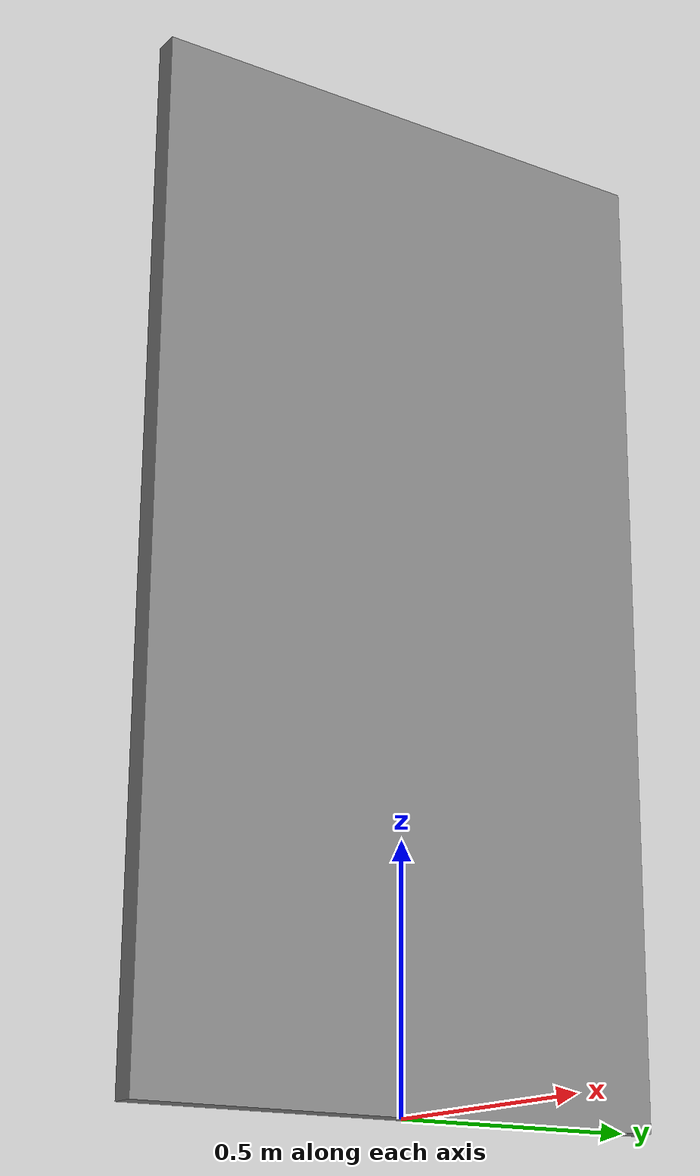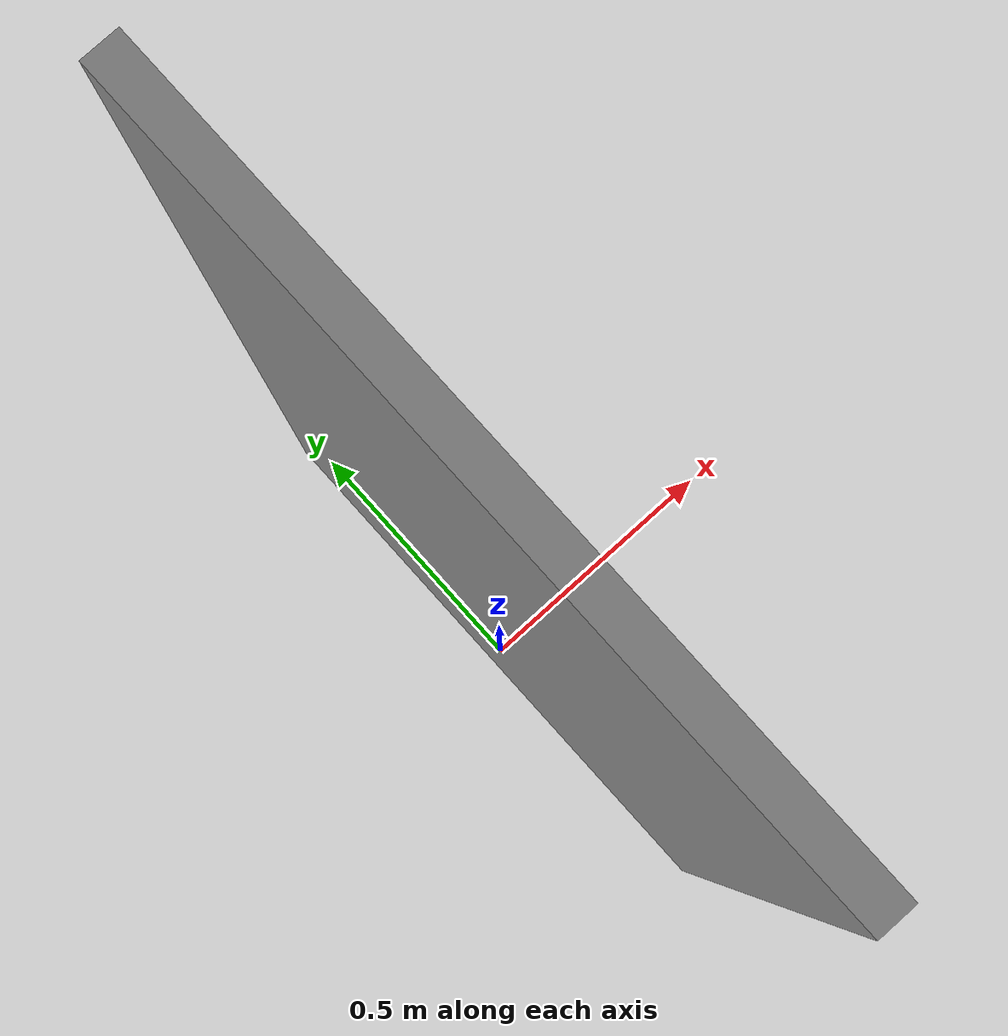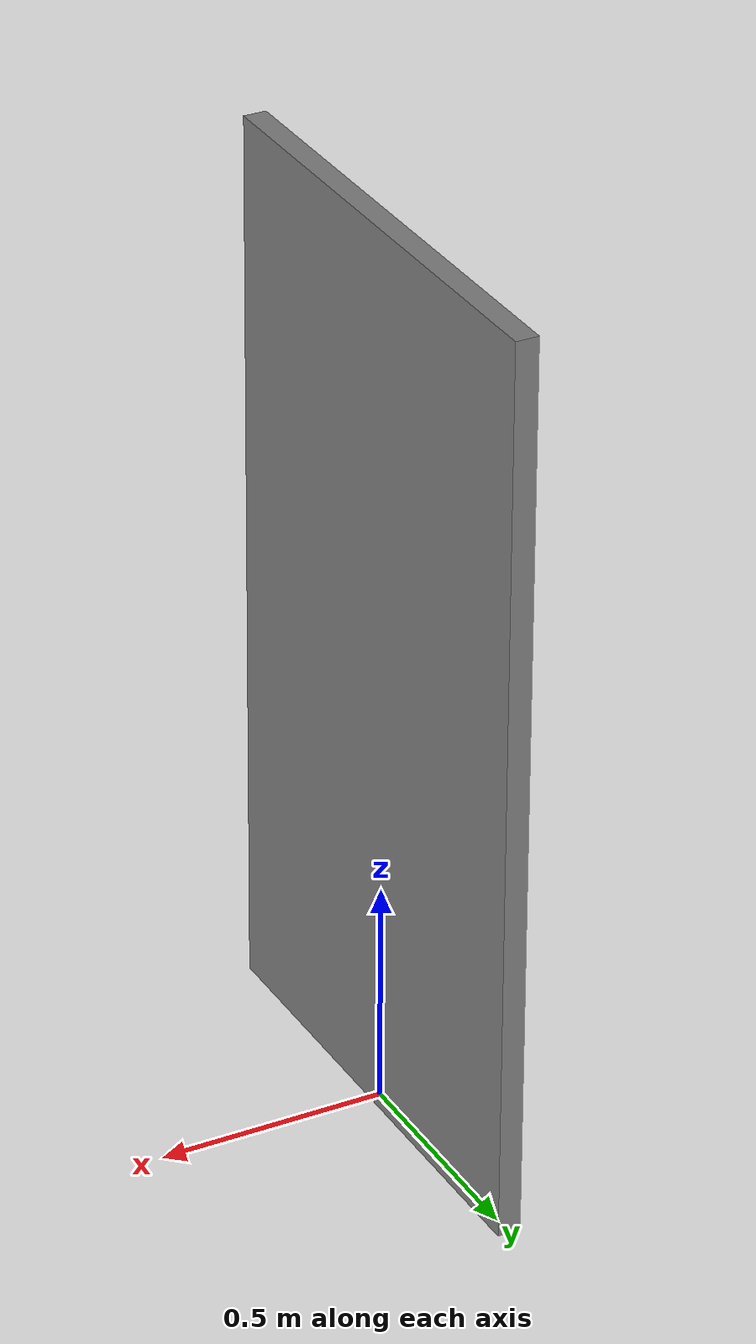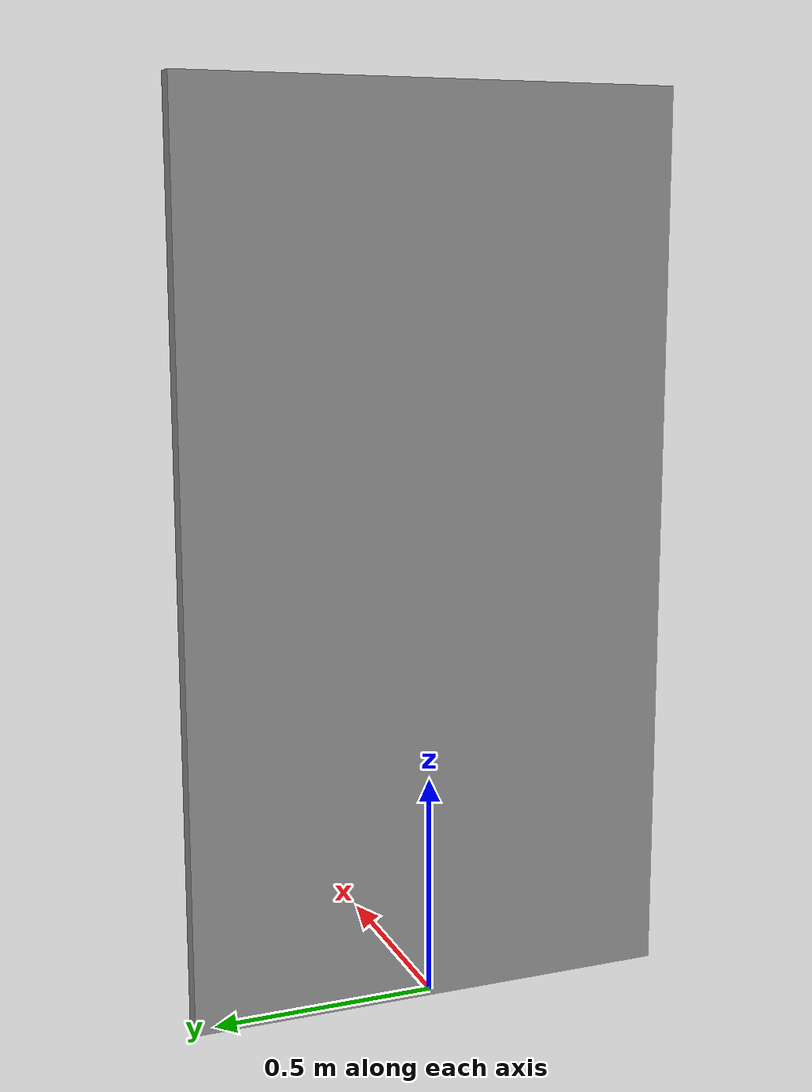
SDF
<?xml version='1.0'?>
<sdf version="1.4">
<model name="door">
  <pose>0 0 1 0 0 0</pose>
  <static>true</static>
    <link name="link">
      <inertial>
        <mass>1.0</mass>
        <inertia>
          <ixx>1.0</ixx>
          <ixy>0.0</ixy>
          <ixz>0.0</ixz>
          <iyy>1.0</iyy>
          <iyz>0.0</iyz>
          <izz>1.0</izz>
        </inertia>
      </inertial>
      <collision name="collision">
        <geometry>
          <box>
            <size>0.05 1.1 2.0</size>
          </box>
        </geometry>
      </collision>
      <visual name="visual">
        <geometry>
          <box>
            <size>0.05 1.1 2.0</size>
          </box>
        </geometry>
          <material>
            <ambient>0.5 0.5 0.5 1</ambient>
            <diffuse>0.5 0.5 0.5 1</diffuse>
            <specular>0.1 0.1 0.1 1</specular>
            <emissive>0 0 0 0</emissive>
          </material>
      </visual>
    </link>
  </model>
</sdf>
